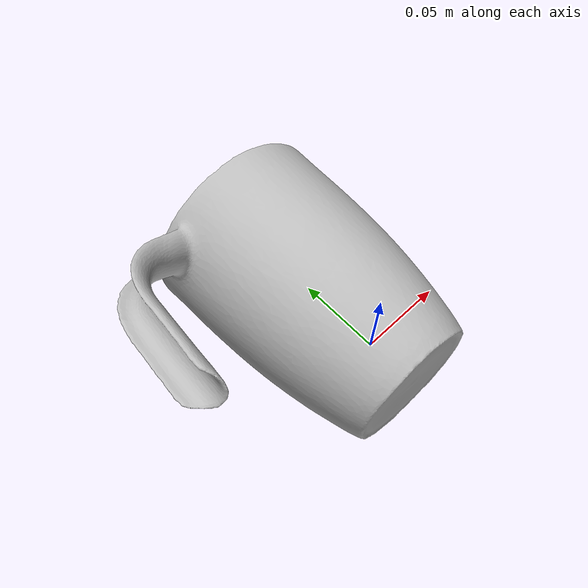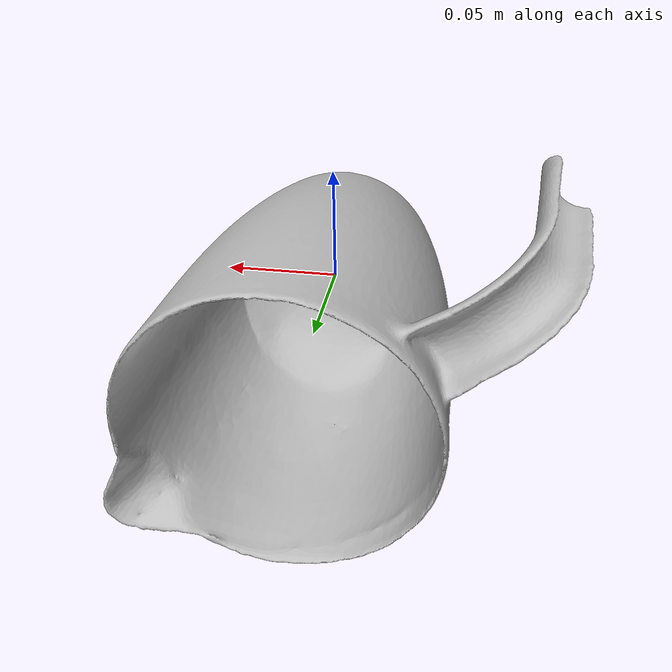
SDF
<?xml version='1.0'?>
<sdf version="1.4">
  <model name="Pitcher">
    <static>false</static>
    <link name="link">
      <inertial>
        <pose>-0.011806032686027845 0.049754096342083595 0.005107489319147154 -0.5800178262814759 0.9944518849108365 -3.1378806227586336</pose>
        <mass>0.17670457686245836</mass>
        <inertia>
          <ixx>0.0005691130980064594</ixx>
          <ixy>4.97164722631581e-21</ixy>
          <ixz>-6.868506997265271e-20</ixz>
          <iyy>0.0004099629599174141</iyy>
          <iyz>3.6703240966522716e-20</iyz>
          <izz>0.00038877083549987337</izz>
        </inertia>
      </inertial>
      <collision name="collision">
        <geometry>
          <mesh>
            <!-- Use a downsampled mesh for collisions -->
            <uri>model:///Pitcher/Pitcher_250_collision.obj</uri>
	        </mesh>
        </geometry>
        <surface>
      </surface>
      </collision>
      <visual name="visual">
        <geometry>
          <mesh>
            <uri>model:///Pitcher/Pitcher_25k_tex.obj</uri>
	        </mesh>
        </geometry>
        <material>
          <script>
            <uri>model:///Pitcher/Pitcher.material</uri>
            <name>Pitcher</name>
          </script>
        </material>
      </visual>
    </link>
  </model>
</sdf>
